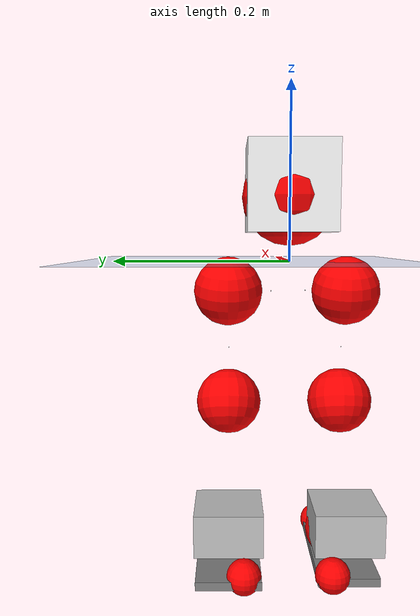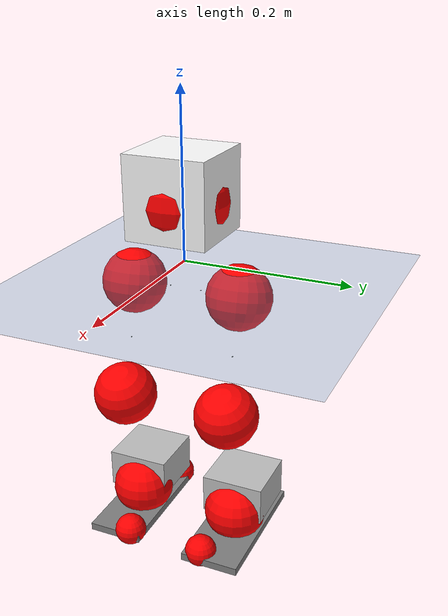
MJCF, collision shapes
<mujoco model="pi_12dof_release_v1">
  <compiler angle="radian" assetdir="assets" balanceinertia="true" inertiafromgeom="false"/>

  <option timestep="0.005" density="1.2" viscosity="2e-05"/>

  <size nkey="1"/>

  <visual>
    <quality shadowsize="8192"/>
    <map shadowclip="0.5"/>
  </visual>

  <default>
    <default class="/">
      <joint armature="0.01" damping="0.01" frictionloss="0.01"/>
      <geom contype="0" conaffinity="0" group="1" solref="-1000 -80"/>
      <site size="0.01 0.005 0.005" group="5"/>
      <general forcelimited="true" biastype="affine" gainprm="20" biasprm="0 -20 -0.5"/>
      <default class="foot">
        <geom size="0.0845 0.036 0.005" type="box" condim="6" group="4" priority="1" friction="0.9 0.2 0.2" solimp="0.015 1 0.005"/>
      </default>
      <default class="reward_collision_sphere">
        <geom group="5" rgba="1 0 0 1"/>
      </default>
    </default>
  </default>

  <asset>
    <texture type="skybox" colorspace="auto" name="//unnamed_texture_0" builtin="gradient" rgb1="0.95 0.95 0.95" rgb2="0.95 0.95 0.95" width="100" height="600"/>
    <texture type="2d" colorspace="auto" name="texplane" builtin="checker" rgb1="0.345 0.575 0.748" rgb2="0.345 0.575 0.748" markrgb="1 1 1" width="512" height="512"/>
    <material name="MatPlane" class="/" texture="texplane" texuniform="true" texrepeat="2 2" specular="0.9"/>
    <mesh name="baselink_1" class="/" file="baselink_1.STL"/>
    <mesh name="r_hip_pitch_link" class="/" file="r_hip_pitch_link.STL"/>
    <mesh name="r_hip_roll_link" class="/" file="r_hip_roll_link.STL"/>
    <mesh name="r_thigh_link" class="/" file="r_thigh_link.STL"/>
    <mesh name="r_calf_link" class="/" file="r_calf_link.STL"/>
    <mesh name="r_ankle_pitch_link" class="/" file="r_ankle_pitch_link.STL"/>
    <mesh name="r_ankle_roll_link" class="/" file="r_ankle_roll_link.STL"/>
    <mesh name="l_hip_pitch_link" class="/" file="l_hip_pitch_link.STL"/>
    <mesh name="l_hip_roll_link" class="/" file="l_hip_roll_link.STL"/>
    <mesh name="l_thigh_link" class="/" file="l_thigh_link.STL"/>
    <mesh name="l_calf_link" class="/" file="l_calf_link.STL"/>
    <mesh name="l_ankle_pitch_link" class="/" file="l_ankle_pitch_link.STL"/>
    <mesh name="l_ankle_roll_link" class="/" file="l_ankle_roll_link.STL"/>
  </asset>

  <worldbody>
    <geom name="floor" class="/" size="100 100 0.125" type="plane" group="0" material="MatPlane"/>
    <light name="toplight_shadow" class="/" pos="0 0 5" dir="0.0990148 0.0990148 -0.990148" type="directional" ambient="0.04 0.04 0.04" diffuse="0.55 0.55 0.55" specular="0.12 0.12 0.12"/>
    <light name="toplight_fill" class="/" pos="0 0 5" dir="0.0990148 0.0990148 -0.990148" type="directional" castshadow="false" ambient="0.04 0.04 0.04" diffuse="0.3 0.3 0.3" specular="0.08 0.08 0.08"/>
    <body name="trunk" pos="-0.00042133 1.07956e-05 -2.92317e-05" quat="1 -4.4106e-05 0.000178118 -0.00018888">
      <inertial pos="0.00143935 -0.000924435 0.0414021" quat="0.694674 0.00949263 0.00714226 0.719227" mass="2.0194" diaginertia="0.0123579 0.00422808 0.0046627"/>
      <joint name="//unnamed_joint_0" type="free"/>
      <geom name="//unnamed_geom_1" class="/" type="mesh" density="0" rgba="1 1 1 1" mesh="baselink_1"/>
      <geom name="//unnamed_geom_2" class="/" size="0.0488728 0.0488728 0.0488728" pos="0 0 0.0818098" type="box" rgba="1 1 1 1"/>
      <geom name="//unnamed_geom_3" class="reward_collision_sphere" size="0.05376" pos="0 0 0.0715836"/>
      <site name="imu" class="/" pos="0.00104416 -0.000368155 -0.000949314" size="0.00977455"/>
      <camera name="track" class="/" pos="0 -1.72132 0" quat="0.707107 0.707107 0 0" mode="trackcom"/>
      <camera name="ego_camera" class="/" pos="0.0786813 0 0.184072" quat="-0.5 -0.5 0.5 0.5"/>
      <body name="r_hip_pitch_link" pos="0.000667439 -0.0184838 -0.0328571" quat="0.992198 3.10284e-05 -0.124675 -5.56201e-05">
        <inertial pos="0.00108978 -0.0476322 -2.17307e-05" quat="-0.0190109 0.705976 -0.0283313 0.707414" mass="0.338305" diaginertia="0.000136677 4.60556e-05 9.1951e-05"/>
        <joint name="r_hip_pitch_joint" class="/" pos="0 0 0" axis="0.000750258 -1 -0.000269794" range="-1.75148 1.24009" armature="0.00989329" damping="0.0135735" frictionloss="0.0099753"/>
        <geom name="//unnamed_geom_4" class="/" type="mesh" density="0" rgba="0.75294 0.75294 0.75294 1" mesh="r_hip_pitch_link"/>
        <geom name="//unnamed_geom_5" class="/" size="0.000488728 0.000488728 0.000488728" type="box" rgba="0.75294 0.75294 0.75294 1"/>
        <body name="r_hip_roll_link" pos="0.00147044 -0.046955 -0.000833907" quat="1 -3.75206e-05 8.47564e-05 -3.01551e-05">
          <inertial pos="-0.00135011 -0.000109215 -0.0630991" quat="0.704618 -0.0816337 -0.0836294 0.699897" mass="0.367767" diaginertia="0.000426007 0.000130636 0.000144508"/>
          <joint name="r_hip_roll_joint" class="/" pos="0 0 0" axis="-0.999993 0.0030116 -0.00219547" range="-0.118754 0.498977" armature="0.010228" damping="0.00164501" frictionloss="0.00995555"/>
          <geom name="//unnamed_geom_6" class="/" type="mesh" density="0" rgba="0.75294 0.75294 0.75294 1" mesh="r_hip_roll_link"/>
          <geom name="//unnamed_geom_7" class="/" size="0.000488728 0.000488728 0.000488728" type="box" rgba="0.75294 0.75294 0.75294 1"/>
          <geom name="//unnamed_geom_8" class="reward_collision_sphere" size="0.0390982"/>
          <body name="r_thigh_link" pos="-0.000846708 0.000923292 -0.0700974" quat="1 0.000176691 -0.000151212 3.80945e-05">
            <inertial pos="0.000501089 0.00137867 -0.0477985" quat="0.737398 0.675457 0.000942379 0.000317152" mass="0.104623" diaginertia="0.000158785 4.43693e-05 6.48421e-05"/>
            <joint name="r_thigh_joint" class="/" pos="0 0 0" axis="-0.00106962 -0.000729501 -0.999999" range="-0.286138 0.583057" armature="0.00991904" damping="0.00944001" frictionloss="0.00941985"/>
            <geom name="//unnamed_geom_9" class="/" type="mesh" density="0" rgba="0.75294 0.75294 0.75294 1" mesh="r_thigh_link"/>
            <geom name="//unnamed_geom_10" class="/" size="0.000488728 0.000488728 0.000488728" type="box" rgba="0.75294 0.75294 0.75294 1"/>
            <body name="r_calf_link" pos="-0.000529 -0.00235109 -0.0718696" quat="0.947635 -2.46412e-05 0.319355 -4.90082e-05">
              <inertial pos="0.00053379 -0.00168967 -0.0705278" quat="0.999981 -0.00033802 0.000608413 0.00620026" mass="0.766113" diaginertia="0.0045261 0.00166299 0.000197814"/>
              <joint name="r_calf_joint" class="/" pos="0 0 0" axis="0.00373556 -0.999988 -0.00325182" stiffness="0.00104713" range="-1.6513 0.640437" armature="0.010136" damping="0.00668694" frictionloss="0.009632"/>
              <geom name="//unnamed_geom_11" class="/" type="mesh" density="0" rgba="0.75294 0.75294 0.75294 1" mesh="r_calf_link"/>
              <geom name="//unnamed_geom_12" class="/" size="0.000488728 0.000488728 0.000488728" type="box" rgba="0.75294 0.75294 0.75294 1"/>
              <geom name="//unnamed_geom_13" class="reward_collision_sphere" size="0.0390982"/>
              <body name="r_ankle_pitch_link" pos="-0.000273846 0.000485502 -0.143139" quat="0.980082 -6.62926e-05 -0.198591 3.01269e-05">
                <inertial pos="0.00509863 0.00272571 0.000650063" quat="0.00146445 0.707077 0.00214237 0.707132" mass="0.162119" diaginertia="0.000393094 0.000104672 0.00013361"/>
                <joint name="r_ankle_pitch_joint" class="/" pos="0 0 0" axis="-0.00544939 -0.999984 0.00166085" range="-1.3014 0.48336" armature="0.0093156" damping="0.00804299" frictionloss="0.00986509"/>
                <geom name="//unnamed_geom_14" class="/" type="mesh" density="0" rgba="0.75294 0.75294 0.75294 1" mesh="r_ankle_pitch_link"/>
                <geom name="//unnamed_geom_15" class="/" size="0.0381207 0.0390982 0.0244364" type="box" rgba="0.75294 0.75294 0.75294 1"/>
                <body name="r_ankle_roll_link" pos="0.0810013 0.00295341 -1.69202e-05" quat="1 0.000351915 -7.01683e-06 -0.000128488">
                  <inertial pos="-0.0245164 0.000181972 -0.0148452" quat="0.560029 0.431678 0.431701 0.56005" mass="0.475391" diaginertia="0.00142053 0.000486711 0.000313821"/>
                  <joint name="r_ankle_roll_joint" class="/" pos="0 0 0" axis="-0.999994 -0.00328512 0.00111707" range="-0.167574 0.154839" armature="0.00995846" damping="0.00720806" frictionloss="0.00996985"/>
                  <geom name="//unnamed_geom_16" class="/" type="mesh" density="0" rgba="0.75294 0.75294 0.75294 1" mesh="r_ankle_roll_link"/>
                  <geom name="//unnamed_geom_17" class="/" type="mesh" rgba="0.75294 0.75294 0.75294 1" mesh="r_ankle_roll_link"/>
                  <geom name="right_foot" class="foot" size="0.0803764 0.0341324 0.00473084" pos="-0.0535033 0 -0.0449954"/>
                  <geom name="//unnamed_geom_19" class="reward_collision_sphere" size="0.0390982" pos="-0.0524542 0 -0.0204525"/>
                  <geom name="//unnamed_geom_20" class="reward_collision_sphere" size="0.0195491" pos="0.0157363 0.0172132 -0.0409049"/>
                  <geom name="//unnamed_geom_21" class="reward_collision_sphere" size="0.0195491" pos="-0.12589 0.0172132 -0.0409049"/>
                  <site name="right_foot" class="foot" pos="-0.0535033 0 -0.0449954" size="0.00977455"/>
                </body>
              </body>
            </body>
          </body>
        </body>
      </body>
      <body name="l_hip_pitch_link" pos="-7.01046e-05 0.0205751 -0.0334037" quat="0.992195 9.3166e-06 -0.124693 -1.86269e-05">
        <inertial pos="0.00103147 0.0455214 -0.000653267" quat="-0.0388805 0.707149 0.0312042 0.705305" mass="0.365417" diaginertia="0.000165912 4.95454e-05 0.000114283"/>
        <joint name="l_hip_pitch_joint" class="/" pos="0 0 0" axis="6.89737e-05 1 -0.000530737" range="-1.23752 1.74996" armature="0.00971025" damping="0.00778038" frictionloss="0.0102044"/>
        <geom name="//unnamed_geom_22" class="/" type="mesh" density="0" rgba="0.75294 0.75294 0.75294 1" mesh="l_hip_pitch_link"/>
        <geom name="//unnamed_geom_23" class="/" size="0.000488728 0.000488728 0.000488728" type="box" rgba="0.75294 0.75294 0.75294 1"/>
        <body name="l_hip_roll_link" pos="0.000776372 0.0487941 -0.000549725" quat="1 6.21658e-07 1.59859e-07 -3.98468e-06">
          <inertial pos="-0.00205609 -0.000103023 -0.0631845" quat="0.698833 -0.0755273 -0.0781814 0.706977" mass="0.368152" diaginertia="0.000423906 0.000131066 0.000144924"/>
          <joint name="l_hip_roll_joint" class="/" pos="0 0 0" axis="-0.999999 -0.00127108 -0.000686483" range="-0.500721 0.105935" armature="0.00954366" damping="0.00172384" frictionloss="0.0101946"/>
          <geom name="//unnamed_geom_24" class="/" type="mesh" density="0" rgba="0.75294 0.75294 0.75294 1" mesh="l_hip_roll_link"/>
          <geom name="//unnamed_geom_25" class="/" size="0.000488728 0.000488728 0.000488728" type="box" rgba="0.75294 0.75294 0.75294 1"/>
          <geom name="//unnamed_geom_26" class="reward_collision_sphere" size="0.0390982"/>
          <body name="l_thigh_link" pos="6.58932e-05 -0.000693919 -0.0703492" quat="1 -3.14844e-05 -9.48062e-05 1.16353e-05">
            <inertial pos="-0.000302678 -0.00178846 -0.0485338" quat="0.673777 0.738925 -0.00368839 0.0013828" mass="0.10651" diaginertia="0.000162494 4.51181e-05 6.57289e-05"/>
            <joint name="l_thigh_joint" class="/" pos="0 0 0" axis="-0.000222121 -0.000539183 -1" range="-0.608723 0.316501" armature="0.00980118" damping="0.00277216" frictionloss="0.00987278"/>
            <geom name="//unnamed_geom_27" class="/" type="mesh" density="0" rgba="0.75294 0.75294 0.75294 1" mesh="l_thigh_link"/>
            <geom name="//unnamed_geom_28" class="/" size="0.000488728 0.000488728 0.000488728" type="box" rgba="0.75294 0.75294 0.75294 1"/>
            <body name="l_calf_link" pos="0.000578601 0.000240651 -0.0724525" quat="0.947616 -6.39729e-05 0.319412 0.000122323">
              <inertial pos="0.00126217 0.00219397 -0.0723986" quat="0.99999 0.00448447 -0.000399366 -0.000304086" mass="0.748165" diaginertia="0.00443393 0.00163995 0.000193008"/>
              <joint name="l_calf_joint" class="/" pos="0 0 0" axis="-0.00373644 0.999993 -0.000620552" stiffness="0.00241367" range="-0.64892 1.65037" armature="0.00981121" damping="0.00580866" frictionloss="0.00970257"/>
              <geom name="//unnamed_geom_29" class="/" type="mesh" density="0" rgba="0.75294 0.75294 0.75294 1" mesh="l_calf_link"/>
              <geom name="//unnamed_geom_30" class="/" size="0.000488728 0.000488728 0.000488728" type="box" rgba="0.75294 0.75294 0.75294 1"/>
              <geom name="//unnamed_geom_31" class="reward_collision_sphere" size="0.0390982"/>
              <body name="l_ankle_pitch_link" pos="0.00129362 0.000294461 -0.143212" quat="0.980108 -8.82721e-05 -0.198465 -1.5184e-05">
                <inertial pos="0.00517729 -0.00157246 0.000384813" quat="-0.00205504 0.706966 0.00215313 0.707242" mass="0.167626" diaginertia="0.000398775 0.000106275 0.000135332"/>
                <joint name="l_ankle_pitch_joint" class="/" pos="0 0 0" axis="-0.000278803 0.999999 0.00108092" range="-0.486957 1.32052" armature="0.0101794" damping="0.0058329" frictionloss="0.00957861"/>
                <geom name="//unnamed_geom_32" class="/" type="mesh" density="0" rgba="0.75294 0.75294 0.75294 1" mesh="l_ankle_pitch_link"/>
                <geom name="//unnamed_geom_33" class="/" size="0.0381207 0.0390982 0.0244364" type="box" rgba="0.75294 0.75294 0.75294 1"/>
                <body name="l_ankle_roll_link" pos="0.0790111 0.00015336 -0.000151022" quat="1 6.96223e-05 -5.70347e-05 0.000133572">
                  <inertial pos="-0.0263164 0.000483709 -0.0143806" quat="0.559282 0.429752 0.432471 0.561681" mass="0.483869" diaginertia="0.00144767 0.000486748 0.000319662"/>
                  <joint name="l_ankle_roll_joint" class="/" pos="0 0 0" axis="-1 -0.000353625 0.000288542" range="-0.16021 0.169747" armature="0.00948209" damping="0.00950254" frictionloss="0.00950892"/>
                  <geom name="//unnamed_geom_34" class="/" type="mesh" density="0" rgba="0.75294 0.75294 0.75294 1" mesh="l_ankle_roll_link"/>
                  <geom name="//unnamed_geom_35" class="/" type="mesh" rgba="0.75294 0.75294 0.75294 1" mesh="l_ankle_roll_link"/>
                  <geom name="left_foot" class="foot" size="0.0852451 0.0364257 0.00478799" pos="-0.0535033 0 -0.0449954"/>
                  <geom name="//unnamed_geom_37" class="reward_collision_sphere" size="0.0390982" pos="-0.0524542 0 -0.0204525"/>
                  <geom name="//unnamed_geom_38" class="reward_collision_sphere" size="0.0195491" pos="0.0157363 -0.0172132 -0.0409049"/>
                  <geom name="//unnamed_geom_39" class="reward_collision_sphere" size="0.0195491" pos="-0.12589 -0.0172132 -0.0409049"/>
                  <site name="left_foot" class="foot" pos="-0.0535033 0 -0.0449954" size="0.00977455"/>
                </body>
              </body>
            </body>
          </body>
        </body>
      </body>
    </body>
  </worldbody>

  <contact>
    <pair class="/" geom1="floor" geom2="right_foot" name="//unnamed_contact_1"/>
    <pair class="/" geom1="floor" geom2="left_foot" name="//unnamed_contact_0"/>
  </contact>

  <actuator>
    <general name="r_hip_pitch_joint" class="/" joint="r_hip_pitch_joint" forcerange="-20.136 20.136" gainprm="19.1209" biasprm="0 -19.1209 -0.482202"/>
    <general name="r_hip_roll_joint" class="/" joint="r_hip_roll_joint" forcerange="-20.5571 20.5571" gainprm="19.1209" biasprm="0 -19.1209 -0.482202"/>
    <general name="r_thigh_joint" class="/" joint="r_thigh_joint" forcerange="-20.3343 20.3343" gainprm="19.1209" biasprm="0 -19.1209 -0.482202"/>
    <general name="r_calf_joint" class="/" joint="r_calf_joint" forcerange="-20.574 20.574" gainprm="19.1209" biasprm="0 -19.1209 -0.482202"/>
    <general name="r_ankle_pitch_joint" class="/" joint="r_ankle_pitch_joint" forcerange="-20.7504 20.7504" gainprm="19.1209" biasprm="0 -19.1209 -0.482202"/>
    <general name="r_ankle_roll_joint" class="/" joint="r_ankle_roll_joint" forcerange="-20.5509 20.5509" gainprm="19.1209" biasprm="0 -19.1209 -0.482202"/>
    <general name="l_hip_pitch_joint" class="/" joint="l_hip_pitch_joint" forcerange="-21.0734 21.0734" gainprm="19.1209" biasprm="0 -19.1209 -0.482202"/>
    <general name="l_hip_roll_joint" class="/" joint="l_hip_roll_joint" forcerange="-20.2261 20.2261" gainprm="19.1209" biasprm="0 -19.1209 -0.482202"/>
    <general name="l_thigh_joint" class="/" joint="l_thigh_joint" forcerange="-20.4996 20.4996" gainprm="19.1209" biasprm="0 -19.1209 -0.482202"/>
    <general name="l_calf_joint" class="/" joint="l_calf_joint" forcerange="-20.6194 20.6194" gainprm="19.1209" biasprm="0 -19.1209 -0.482202"/>
    <general name="l_ankle_pitch_joint" class="/" joint="l_ankle_pitch_joint" forcerange="-19.8738 19.8738" gainprm="19.1209" biasprm="0 -19.1209 -0.482202"/>
    <general name="l_ankle_roll_joint" class="/" joint="l_ankle_roll_joint" forcerange="-20.125 20.125" gainprm="19.1209" biasprm="0 -19.1209 -0.482202"/>
  </actuator>

  <sensor>
    <gyro site="imu" name="imu_angular_velocity"/>
    <velocimeter site="imu" name="imu_linear_velocity"/>
    <framelinvel objtype="site" objname="left_foot" name="left_foot_global_linear_velocity"/>
    <framelinvel objtype="site" objname="right_foot" name="right_foot_global_linear_velocity"/>
  </sensor>

  <keyframe>
    <key name="home" qpos="0 0 0.291 1 0 0 0 0.4 0 0 -0.8 0.4 0 -0.4 0 0 0.8 -0.4 0"/>
  </keyframe>
</mujoco>
